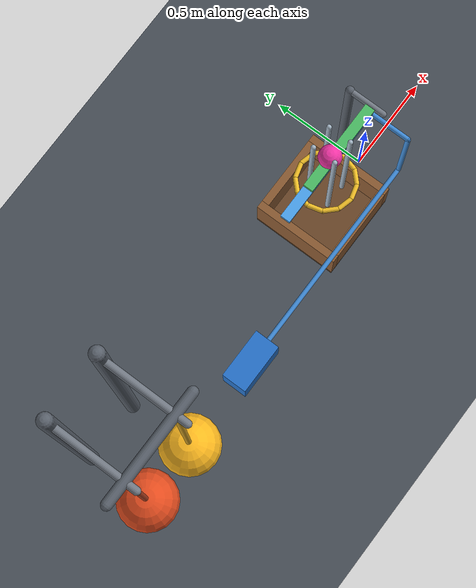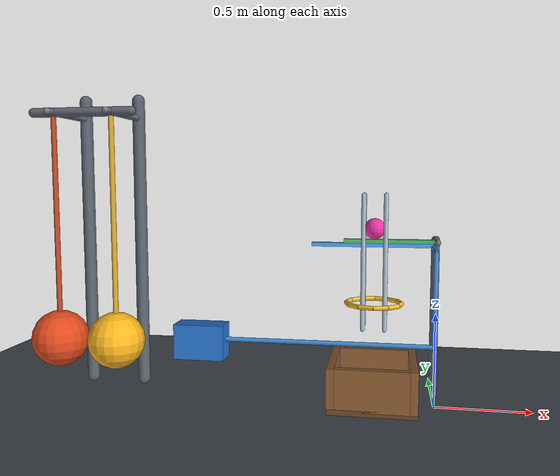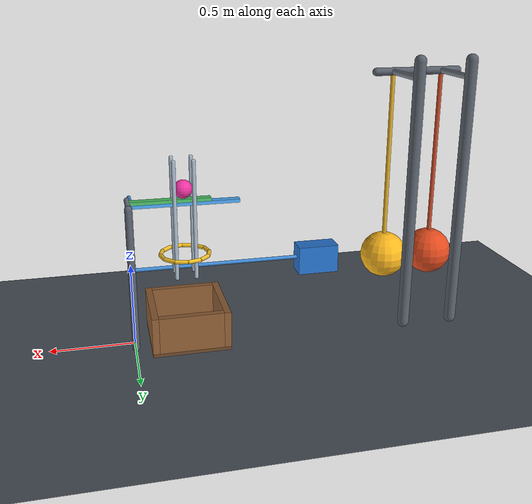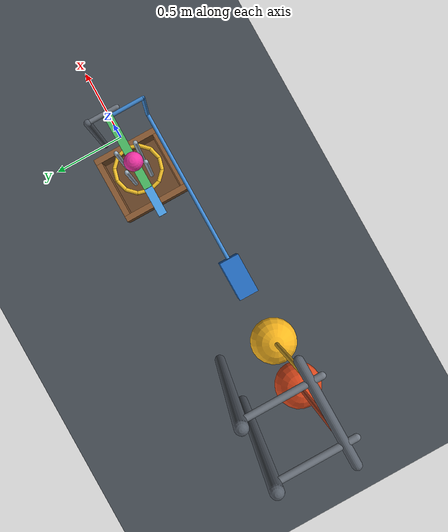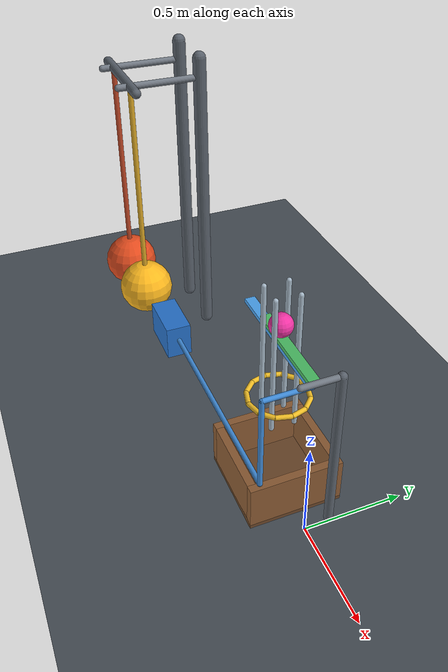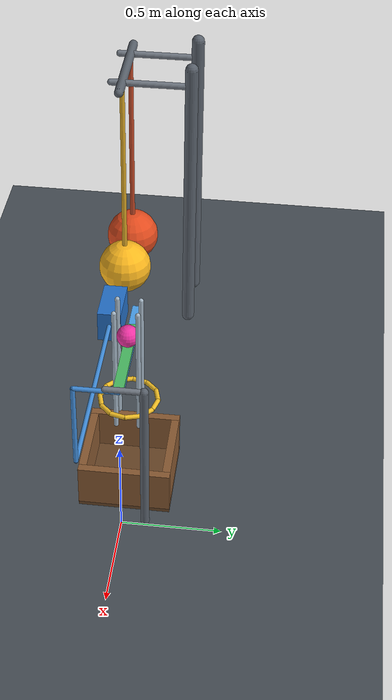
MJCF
<mujoco model="pendulum_cart_ball_release">
  <compiler angle="radian" autolimits="true"/>
  <option timestep="0.002" gravity="0 0 -9.81" integrator="implicitfast" cone="elliptic" iterations="100"/>
  <size njmax="2000" nconmax="400"/>
  <visual>
    <global azimuth="135" elevation="-18"/>
  </visual>

  <worldbody>
    <light name="overhead_light" pos="-1 -2 5" dir="0 0 -1"/>
    <geom name="floor" type="plane" size="6 4 0.1" rgba="0.28 0.31 0.34 1" friction="0.7 0.01 0.001"/>

    <body name="pendulum_frame">
      <geom name="frame_left_post" type="capsule" fromto="-1.99 0.15 0.03 -1.99 0.15 1.65" size="0.035" contype="0" conaffinity="0" rgba="0.35 0.38 0.42 1"/>
      <geom name="frame_right_post" type="capsule" fromto="-1.67 0.15 0.03 -1.67 0.15 1.65" size="0.035" contype="0" conaffinity="0" rgba="0.35 0.38 0.42 1"/>
      <geom name="frame_crossbar" type="capsule" fromto="-2.10 -0.22 1.55 -1.56 -0.22 1.55" size="0.025" contype="0" conaffinity="0" rgba="0.35 0.38 0.42 1"/>
      <geom name="frame_pivot1_axle" type="capsule" fromto="-1.99 -0.28 1.55 -1.99 0.15 1.55" size="0.018" contype="0" conaffinity="0" rgba="0.45 0.48 0.52 1"/>
      <geom name="frame_pivot2_axle" type="capsule" fromto="-1.67 -0.28 1.55 -1.67 0.15 1.55" size="0.018" contype="0" conaffinity="0" rgba="0.45 0.48 0.52 1"/>
    </body>

    <!-- The first bob rises by 1.2*(1-cos(start_angle)) = 0.7 m. -->
    <body name="pend1" pos="-1.99 -0.22 1.55">
      <joint name="pend1_hinge" type="hinge" axis="0 1 0" range="-1.5 1.5" damping="0.012"/>
      <geom name="pend1_rod" type="capsule" fromto="0 0 0 0 0 -1.2" size="0.014" mass="0.025" contype="0" conaffinity="0" rgba="0.75 0.28 0.15 1"/>
      <geom name="pend1_bob" type="sphere" pos="0 0 -1.2" size="0.15" mass="1.6" friction="0.15 0.002 0.0002" solref="0.006 0.7" rgba="0.90 0.30 0.12 1"/>
    </body>

    <body name="pend2" pos="-1.67 -0.22 1.55">
      <joint name="pend2_hinge" type="hinge" axis="0 1 0" range="-1.5 1.5" damping="0.012"/>
      <geom name="pend2_rod" type="capsule" fromto="0 0 0 0 0 -1.2" size="0.014" mass="0.025" contype="0" conaffinity="0" rgba="0.85 0.65 0.15 1"/>
      <geom name="pend2_bob" type="sphere" pos="0 0 -1.2" size="0.15" mass="0.85" friction="0.15 0.002 0.0002" solref="0.006 0.7" rgba="1 0.73 0.12 1"/>
    </body>

    <!-- The cart carries a low-friction keeper beneath the flap.
         Its impact-driven rightward stroke withdraws the keeper. -->
    <body name="cart" pos="-1.2 -0.22 0.37">
      <joint name="cart_slide" type="slide" axis="1 0 0" range="0 1.75" damping="0.025" frictionloss="0.015" solreflimit="0.012 1"/>
      <geom name="cart_chassis" type="box" size="0.13 0.065 0.09" mass="0.25" friction="0.005 0.001 0.0001" solref="0.008 1" rgba="0.15 0.45 0.80 1"/>
      <geom name="cart_lower_beam" type="capsule" fromto="0 0 0.01 1.18 0 0.01" size="0.012" mass="0.04" friction="0.005 0.001 0.0001" rgba="0.25 0.55 0.85 1"/>
      <geom name="cart_upright" type="capsule" fromto="1.18 0 0.01 1.18 0 0.48" size="0.012" mass="0.025" friction="0.005 0.001 0.0001" rgba="0.25 0.55 0.85 1"/>
      <geom name="cart_crosspiece" type="capsule" fromto="1.18 0 0.48 1.18 0.22 0.48" size="0.012" mass="0.015" friction="0.005 0.001 0.0001" rgba="0.25 0.55 0.85 1"/>
      <geom name="cart_keeper" type="box" pos="0.865 0.22 0.49" size="0.315 0.025 0.01" mass="0.07" friction="0.005 0.001 0.0001" solref="0.008 1" rgba="0.30 0.65 0.95 1"/>
    </body>

    <body name="flap_mount">
      <geom name="flap_mount_post" type="capsule" fromto="0 0.12 0.03 0 0.12 0.88" size="0.022" contype="0" conaffinity="0" rgba="0.35 0.38 0.42 1"/>
      <geom name="flap_mount_axle" type="capsule" fromto="0 -0.065 0.88 0 0.12 0.88" size="0.015" contype="0" conaffinity="0" rgba="0.45 0.48 0.52 1"/>
    </body>

    <!-- Negative hinge rotation lowers the flap's left end. -->
    <body name="flap" pos="0 0 0.88">
      <joint name="flap_hinge" type="hinge" axis="0 1 0" range="-1.48 0" damping="0.025" solreflimit="0.01 1"/>
      <geom name="flap_leaf" type="box" pos="-0.24 0 0" size="0.24 0.025 0.01" mass="0.045" friction="0.005 0.001 0.0001" solref="0.008 1" rgba="0.30 0.75 0.40 1"/>
    </body>

    <!-- Four narrow guide rods constrain lateral drift without obstructing
         the narrow flap or closing the hoop's central passage. -->
    <body name="ball_guide" pos="-0.32 0 0">
      <geom name="ball_guide_pp" type="capsule" fromto="0.057 0.057 0.42 0.057 0.057 1.12" size="0.012" friction="0.12 0.002 0.0002" solref="0.01 1" rgba="0.65 0.72 0.78 1"/>
      <geom name="ball_guide_pm" type="capsule" fromto="0.057 -0.057 0.42 0.057 -0.057 1.12" size="0.012" friction="0.12 0.002 0.0002" solref="0.01 1" rgba="0.65 0.72 0.78 1"/>
      <geom name="ball_guide_mp" type="capsule" fromto="-0.057 0.057 0.42 -0.057 0.057 1.12" size="0.012" friction="0.12 0.002 0.0002" solref="0.01 1" rgba="0.65 0.72 0.78 1"/>
      <geom name="ball_guide_mm" type="capsule" fromto="-0.057 -0.057 0.42 -0.057 -0.057 1.12" size="0.012" friction="0.12 0.002 0.0002" solref="0.01 1" rgba="0.65 0.72 0.78 1"/>
    </body>

    <body name="ball" pos="-0.32 0 0.945">
      <freejoint name="ball_free"/>
      <geom name="ball_sphere" type="sphere" size="0.055" mass="0.05" friction="0.25 0.02 0.002" solref="0.012 1" rgba="0.95 0.20 0.65 1"/>
    </body>

    <body name="hoop" pos="-0.32 0 0.55">
      <geom name="hoop_01" type="capsule" fromto="0.145 0 0 0.125574 0.0725 0" size="0.012" friction="0.2 0.005 0.001" rgba="0.95 0.75 0.15 1"/>
      <geom name="hoop_02" type="capsule" fromto="0.125574 0.0725 0 0.0725 0.125574 0" size="0.012" friction="0.2 0.005 0.001" rgba="0.95 0.75 0.15 1"/>
      <geom name="hoop_03" type="capsule" fromto="0.0725 0.125574 0 0 0.145 0" size="0.012" friction="0.2 0.005 0.001" rgba="0.95 0.75 0.15 1"/>
      <geom name="hoop_04" type="capsule" fromto="0 0.145 0 -0.0725 0.125574 0" size="0.012" friction="0.2 0.005 0.001" rgba="0.95 0.75 0.15 1"/>
      <geom name="hoop_05" type="capsule" fromto="-0.0725 0.125574 0 -0.125574 0.0725 0" size="0.012" friction="0.2 0.005 0.001" rgba="0.95 0.75 0.15 1"/>
      <geom name="hoop_06" type="capsule" fromto="-0.125574 0.0725 0 -0.145 0 0" size="0.012" friction="0.2 0.005 0.001" rgba="0.95 0.75 0.15 1"/>
      <geom name="hoop_07" type="capsule" fromto="-0.145 0 0 -0.125574 -0.0725 0" size="0.012" friction="0.2 0.005 0.001" rgba="0.95 0.75 0.15 1"/>
      <geom name="hoop_08" type="capsule" fromto="-0.125574 -0.0725 0 -0.0725 -0.125574 0" size="0.012" friction="0.2 0.005 0.001" rgba="0.95 0.75 0.15 1"/>
      <geom name="hoop_09" type="capsule" fromto="-0.0725 -0.125574 0 0 -0.145 0" size="0.012" friction="0.2 0.005 0.001" rgba="0.95 0.75 0.15 1"/>
      <geom name="hoop_10" type="capsule" fromto="0 -0.145 0 0.0725 -0.125574 0" size="0.012" friction="0.2 0.005 0.001" rgba="0.95 0.75 0.15 1"/>
      <geom name="hoop_11" type="capsule" fromto="0.0725 -0.125574 0 0.125574 -0.0725 0" size="0.012" friction="0.2 0.005 0.001" rgba="0.95 0.75 0.15 1"/>
      <geom name="hoop_12" type="capsule" fromto="0.125574 -0.0725 0 0.145 0 0" size="0.012" friction="0.2 0.005 0.001" rgba="0.95 0.75 0.15 1"/>
    </body>

    <body name="box" pos="-0.32 0 0">
      <geom name="box_bottom" type="box" pos="0 0 0.025" size="0.23 0.23 0.015" friction="0.8 0.03 0.003" solref="0.015 1" rgba="0.42 0.28 0.16 1"/>
      <geom name="box_left" type="box" pos="-0.21 0 0.14" size="0.02 0.23 0.11" friction="0.8 0.03 0.003" solref="0.015 1" rgba="0.55 0.36 0.20 1"/>
      <geom name="box_right" type="box" pos="0.21 0 0.14" size="0.02 0.23 0.11" friction="0.8 0.03 0.003" solref="0.015 1" rgba="0.55 0.36 0.20 1"/>
      <geom name="box_front" type="box" pos="0 -0.21 0.14" size="0.19 0.02 0.11" friction="0.8 0.03 0.003" solref="0.015 1" rgba="0.55 0.36 0.20 1"/>
      <geom name="box_back" type="box" pos="0 0.21 0.14" size="0.19 0.02 0.11" friction="0.8 0.03 0.003" solref="0.015 1" rgba="0.55 0.36 0.20 1"/>
    </body>
  </worldbody>

  <keyframe>
    <key name="start" qpos="1.14102089549 0 0 0 -0.32 0 0.945 1 0 0 0" qvel="0 0 0 0 0 0 0 0 0 0"/>
  </keyframe>
</mujoco>
